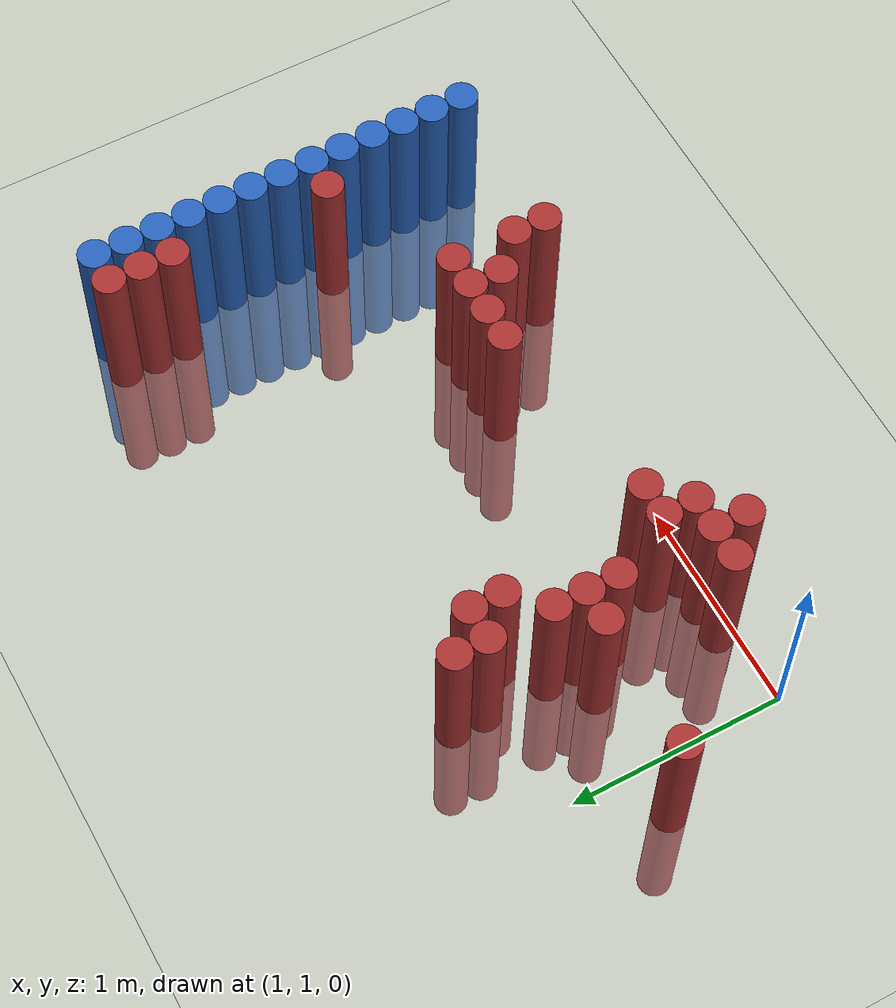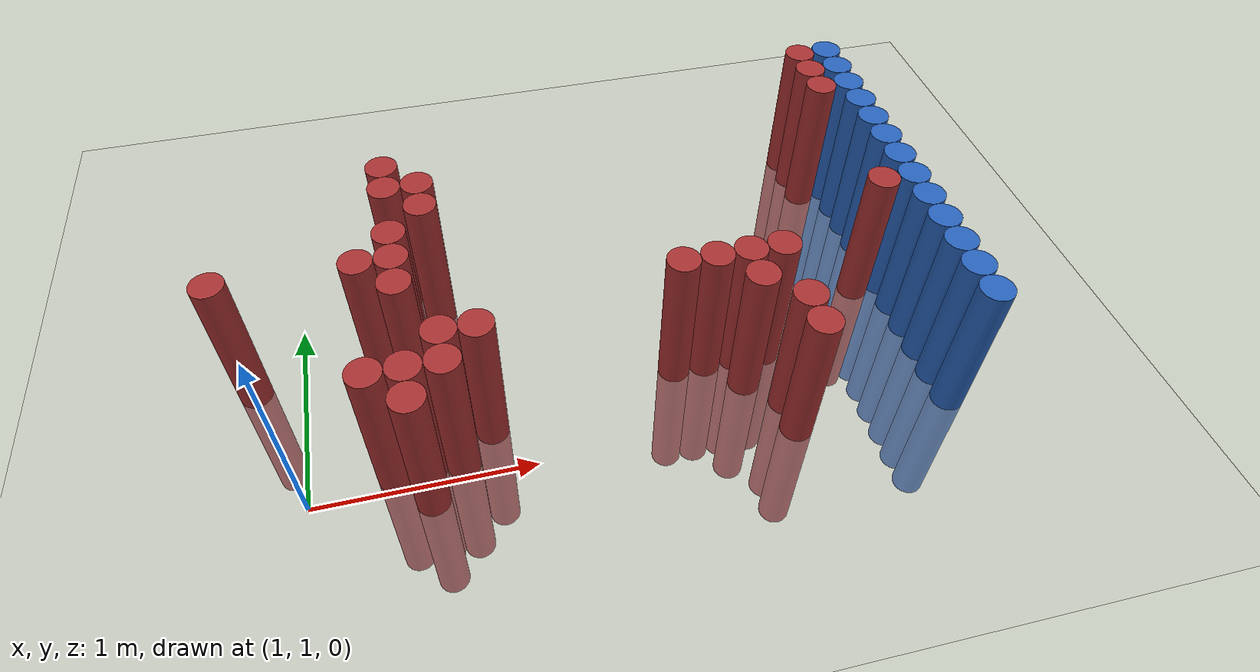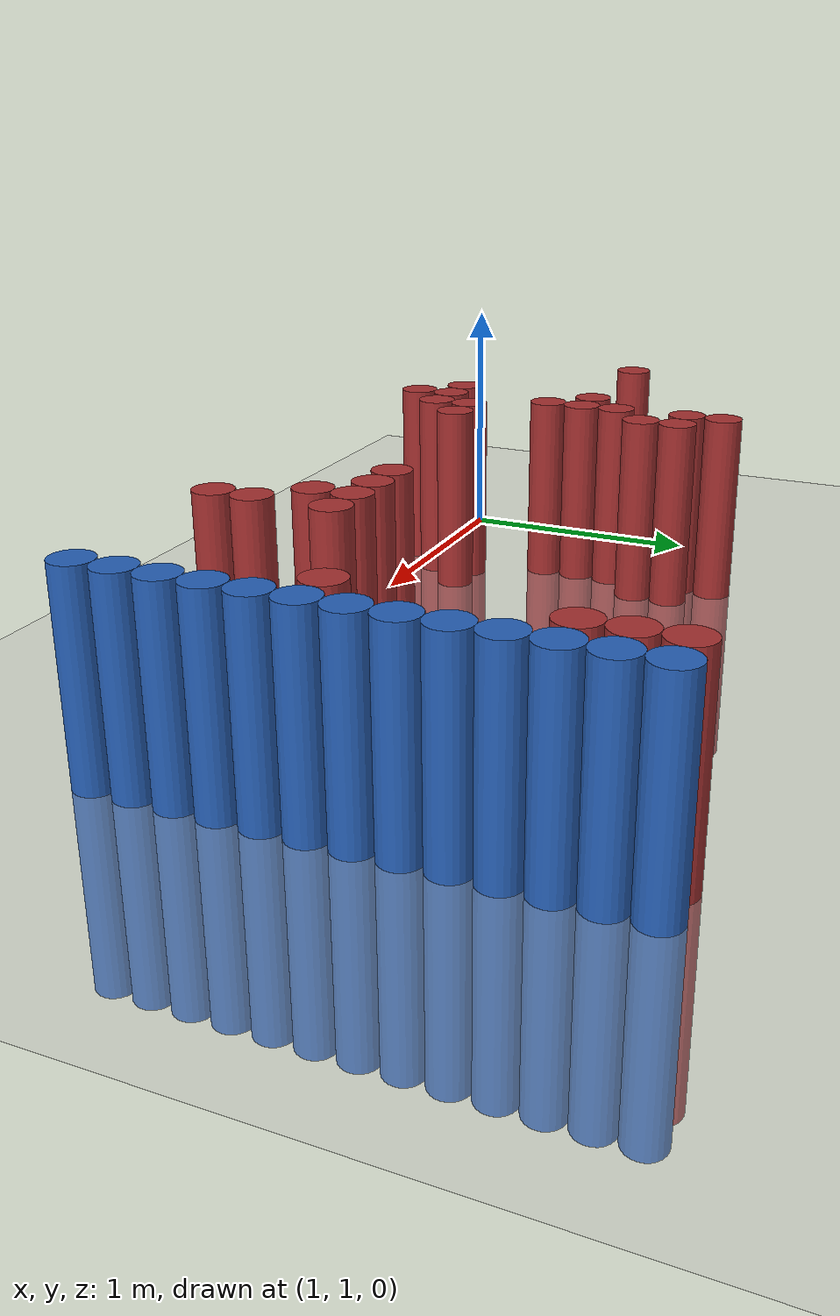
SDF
<sdf version="1.6">
 <world name="default">
  <model name="ground_plane">
   <static>1</static>
   <link name="link">
    <collision name="collision">
     <geometry><plane><normal>0 0 1</normal><size>100 100</size></plane></geometry>
     <surface><friction><ode><mu>100</mu><mu2>50</mu2></ode></friction></surface>
    </collision>
    <visual name="visual">
     <cast_shadows>0</cast_shadows>
     <geometry><plane><normal>0 0 1</normal><size>100 100</size></plane></geometry>
     <material>
      <script><uri>file://media/materials/scripts/gazebo.material</uri><name>Gazebo/Grey</name></script>
     </material>
    </visual>
   </link>
  </model>
  <model name="unit_cylinder_128">
   <static>1</static>
   <pose>3.925000 1.075000 0.000000 0.000000 0.000000 0.000000</pose>
   <link name="link">
    <inertial>
     <mass>1</mass>
     <inertia><ixx>0.145833</ixx><ixy>0</ixy><ixz>0</ixz><iyy>0.145833</iyy><iyz>0</iyz><izz>0.125</izz></inertia>
    </inertial>
    <collision name="collision">
     <geometry><cylinder><radius>0.075000</radius><length>1.5</length></cylinder></geometry>
    </collision>
    <visual name="visual">
     <geometry><cylinder><radius>0.075000</radius><length>1.5</length></cylinder></geometry>
     <material>
      <ambient>0.152000 0.379000 0.720000 1</ambient>
      <diffuse>0.152000 0.379000 0.720000 1</diffuse>
     </material>
     <material>
      <script><name>Gazebo/Grey</name><uri>file://media/materials/scripts/gazebo.material</uri></script>
     </material>
    </visual>
   </link>
  </model>
  <model name="unit_cylinder_130">
   <static>1</static>
   <pose>3.925000 1.225000 0.000000 0.000000 0.000000 0.000000</pose>
   <link name="link">
    <inertial>
     <mass>1</mass>
     <inertia><ixx>0.145833</ixx><ixy>0</ixy><ixz>0</ixz><iyy>0.145833</iyy><iyz>0</iyz><izz>0.125</izz></inertia>
    </inertial>
    <collision name="collision">
     <geometry><cylinder><radius>0.075000</radius><length>1.5</length></cylinder></geometry>
    </collision>
    <visual name="visual">
     <geometry><cylinder><radius>0.075000</radius><length>1.5</length></cylinder></geometry>
     <material>
      <ambient>0.152000 0.379000 0.720000 1</ambient>
      <diffuse>0.152000 0.379000 0.720000 1</diffuse>
     </material>
     <material>
      <script><name>Gazebo/Grey</name><uri>file://media/materials/scripts/gazebo.material</uri></script>
     </material>
    </visual>
   </link>
  </model>
  <model name="unit_cylinder_132">
   <static>1</static>
   <pose>3.925000 1.375000 0.000000 0.000000 0.000000 0.000000</pose>
   <link name="link">
    <inertial>
     <mass>1</mass>
     <inertia><ixx>0.145833</ixx><ixy>0</ixy><ixz>0</ixz><iyy>0.145833</iyy><iyz>0</iyz><izz>0.125</izz></inertia>
    </inertial>
    <collision name="collision">
     <geometry><cylinder><radius>0.075000</radius><length>1.5</length></cylinder></geometry>
    </collision>
    <visual name="visual">
     <geometry><cylinder><radius>0.075000</radius><length>1.5</length></cylinder></geometry>
     <material>
      <ambient>0.152000 0.379000 0.720000 1</ambient>
      <diffuse>0.152000 0.379000 0.720000 1</diffuse>
     </material>
     <material>
      <script><name>Gazebo/Grey</name><uri>file://media/materials/scripts/gazebo.material</uri></script>
     </material>
    </visual>
   </link>
  </model>
  <model name="unit_cylinder_134">
   <static>1</static>
   <pose>3.925000 1.525000 0.000000 0.000000 0.000000 0.000000</pose>
   <link name="link">
    <inertial>
     <mass>1</mass>
     <inertia><ixx>0.145833</ixx><ixy>0</ixy><ixz>0</ixz><iyy>0.145833</iyy><iyz>0</iyz><izz>0.125</izz></inertia>
    </inertial>
    <collision name="collision">
     <geometry><cylinder><radius>0.075000</radius><length>1.5</length></cylinder></geometry>
    </collision>
    <visual name="visual">
     <geometry><cylinder><radius>0.075000</radius><length>1.5</length></cylinder></geometry>
     <material>
      <ambient>0.152000 0.379000 0.720000 1</ambient>
      <diffuse>0.152000 0.379000 0.720000 1</diffuse>
     </material>
     <material>
      <script><name>Gazebo/Grey</name><uri>file://media/materials/scripts/gazebo.material</uri></script>
     </material>
    </visual>
   </link>
  </model>
  <model name="unit_cylinder_136">
   <static>1</static>
   <pose>3.925000 1.675000 0.000000 0.000000 0.000000 0.000000</pose>
   <link name="link">
    <inertial>
     <mass>1</mass>
     <inertia><ixx>0.145833</ixx><ixy>0</ixy><ixz>0</ixz><iyy>0.145833</iyy><iyz>0</iyz><izz>0.125</izz></inertia>
    </inertial>
    <collision name="collision">
     <geometry><cylinder><radius>0.075000</radius><length>1.5</length></cylinder></geometry>
    </collision>
    <visual name="visual">
     <geometry><cylinder><radius>0.075000</radius><length>1.5</length></cylinder></geometry>
     <material>
      <ambient>0.152000 0.379000 0.720000 1</ambient>
      <diffuse>0.152000 0.379000 0.720000 1</diffuse>
     </material>
     <material>
      <script><name>Gazebo/Grey</name><uri>file://media/materials/scripts/gazebo.material</uri></script>
     </material>
    </visual>
   </link>
  </model>
  <model name="unit_cylinder_138">
   <static>1</static>
   <pose>3.925000 1.825000 0.000000 0.000000 0.000000 0.000000</pose>
   <link name="link">
    <inertial>
     <mass>1</mass>
     <inertia><ixx>0.145833</ixx><ixy>0</ixy><ixz>0</ixz><iyy>0.145833</iyy><iyz>0</iyz><izz>0.125</izz></inertia>
    </inertial>
    <collision name="collision">
     <geometry><cylinder><radius>0.075000</radius><length>1.5</length></cylinder></geometry>
    </collision>
    <visual name="visual">
     <geometry><cylinder><radius>0.075000</radius><length>1.5</length></cylinder></geometry>
     <material>
      <ambient>0.152000 0.379000 0.720000 1</ambient>
      <diffuse>0.152000 0.379000 0.720000 1</diffuse>
     </material>
     <material>
      <script><name>Gazebo/Grey</name><uri>file://media/materials/scripts/gazebo.material</uri></script>
     </material>
    </visual>
   </link>
  </model>
  <model name="unit_cylinder_140">
   <static>1</static>
   <pose>3.925000 1.975000 0.000000 0.000000 0.000000 0.000000</pose>
   <link name="link">
    <inertial>
     <mass>1</mass>
     <inertia><ixx>0.145833</ixx><ixy>0</ixy><ixz>0</ixz><iyy>0.145833</iyy><iyz>0</iyz><izz>0.125</izz></inertia>
    </inertial>
    <collision name="collision">
     <geometry><cylinder><radius>0.075000</radius><length>1.5</length></cylinder></geometry>
    </collision>
    <visual name="visual">
     <geometry><cylinder><radius>0.075000</radius><length>1.5</length></cylinder></geometry>
     <material>
      <ambient>0.152000 0.379000 0.720000 1</ambient>
      <diffuse>0.152000 0.379000 0.720000 1</diffuse>
     </material>
     <material>
      <script><name>Gazebo/Grey</name><uri>file://media/materials/scripts/gazebo.material</uri></script>
     </material>
    </visual>
   </link>
  </model>
  <model name="unit_cylinder_142">
   <static>1</static>
   <pose>3.925000 2.125000 0.000000 0.000000 0.000000 0.000000</pose>
   <link name="link">
    <inertial>
     <mass>1</mass>
     <inertia><ixx>0.145833</ixx><ixy>0</ixy><ixz>0</ixz><iyy>0.145833</iyy><iyz>0</iyz><izz>0.125</izz></inertia>
    </inertial>
    <collision name="collision">
     <geometry><cylinder><radius>0.075000</radius><length>1.5</length></cylinder></geometry>
    </collision>
    <visual name="visual">
     <geometry><cylinder><radius>0.075000</radius><length>1.5</length></cylinder></geometry>
     <material>
      <ambient>0.152000 0.379000 0.720000 1</ambient>
      <diffuse>0.152000 0.379000 0.720000 1</diffuse>
     </material>
     <material>
      <script><name>Gazebo/Grey</name><uri>file://media/materials/scripts/gazebo.material</uri></script>
     </material>
    </visual>
   </link>
  </model>
  <model name="unit_cylinder_144">
   <static>1</static>
   <pose>3.925000 2.275000 0.000000 0.000000 0.000000 0.000000</pose>
   <link name="link">
    <inertial>
     <mass>1</mass>
     <inertia><ixx>0.145833</ixx><ixy>0</ixy><ixz>0</ixz><iyy>0.145833</iyy><iyz>0</iyz><izz>0.125</izz></inertia>
    </inertial>
    <collision name="collision">
     <geometry><cylinder><radius>0.075000</radius><length>1.5</length></cylinder></geometry>
    </collision>
    <visual name="visual">
     <geometry><cylinder><radius>0.075000</radius><length>1.5</length></cylinder></geometry>
     <material>
      <ambient>0.152000 0.379000 0.720000 1</ambient>
      <diffuse>0.152000 0.379000 0.720000 1</diffuse>
     </material>
     <material>
      <script><name>Gazebo/Grey</name><uri>file://media/materials/scripts/gazebo.material</uri></script>
     </material>
    </visual>
   </link>
  </model>
  <model name="unit_cylinder_146">
   <static>1</static>
   <pose>3.925000 2.425000 0.000000 0.000000 0.000000 0.000000</pose>
   <link name="link">
    <inertial>
     <mass>1</mass>
     <inertia><ixx>0.145833</ixx><ixy>0</ixy><ixz>0</ixz><iyy>0.145833</iyy><iyz>0</iyz><izz>0.125</izz></inertia>
    </inertial>
    <collision name="collision">
     <geometry><cylinder><radius>0.075000</radius><length>1.5</length></cylinder></geometry>
    </collision>
    <visual name="visual">
     <geometry><cylinder><radius>0.075000</radius><length>1.5</length></cylinder></geometry>
     <material>
      <ambient>0.152000 0.379000 0.720000 1</ambient>
      <diffuse>0.152000 0.379000 0.720000 1</diffuse>
     </material>
     <material>
      <script><name>Gazebo/Grey</name><uri>file://media/materials/scripts/gazebo.material</uri></script>
     </material>
    </visual>
   </link>
  </model>
  <model name="unit_cylinder_148">
   <static>1</static>
   <pose>3.925000 2.575000 0.000000 0.000000 0.000000 0.000000</pose>
   <link name="link">
    <inertial>
     <mass>1</mass>
     <inertia><ixx>0.145833</ixx><ixy>0</ixy><ixz>0</ixz><iyy>0.145833</iyy><iyz>0</iyz><izz>0.125</izz></inertia>
    </inertial>
    <collision name="collision">
     <geometry><cylinder><radius>0.075000</radius><length>1.5</length></cylinder></geometry>
    </collision>
    <visual name="visual">
     <geometry><cylinder><radius>0.075000</radius><length>1.5</length></cylinder></geometry>
     <material>
      <ambient>0.152000 0.379000 0.720000 1</ambient>
      <diffuse>0.152000 0.379000 0.720000 1</diffuse>
     </material>
     <material>
      <script><name>Gazebo/Grey</name><uri>file://media/materials/scripts/gazebo.material</uri></script>
     </material>
    </visual>
   </link>
  </model>
  <model name="unit_cylinder_150">
   <static>1</static>
   <pose>3.925000 2.725000 0.000000 0.000000 0.000000 0.000000</pose>
   <link name="link">
    <inertial>
     <mass>1</mass>
     <inertia><ixx>0.145833</ixx><ixy>0</ixy><ixz>0</ixz><iyy>0.145833</iyy><iyz>0</iyz><izz>0.125</izz></inertia>
    </inertial>
    <collision name="collision">
     <geometry><cylinder><radius>0.075000</radius><length>1.5</length></cylinder></geometry>
    </collision>
    <visual name="visual">
     <geometry><cylinder><radius>0.075000</radius><length>1.5</length></cylinder></geometry>
     <material>
      <ambient>0.152000 0.379000 0.720000 1</ambient>
      <diffuse>0.152000 0.379000 0.720000 1</diffuse>
     </material>
     <material>
      <script><name>Gazebo/Grey</name><uri>file://media/materials/scripts/gazebo.material</uri></script>
     </material>
    </visual>
   </link>
  </model>
  <model name="unit_cylinder_363">
   <static>1</static>
   <pose>0.775000 1.675000 0.000000 0.000000 0.000000 0.000000</pose>
   <link name="link">
    <inertial>
     <mass>1</mass>
     <inertia><ixx>0.145833</ixx><ixy>0</ixy><ixz>0</ixz><iyy>0.145833</iyy><iyz>0</iyz><izz>0.125</izz></inertia>
    </inertial>
    <collision name="collision">
     <geometry><cylinder><radius>0.075000</radius><length>1.5</length></cylinder></geometry>
    </collision>
    <visual name="visual">
     <geometry><cylinder><radius>0.075000</radius><length>1.5</length></cylinder></geometry>
     <material>
      <ambient>0.648000 0.192000 0.192000 1</ambient>
      <diffuse>0.648000 0.192000 0.192000 1</diffuse>
     </material>
     <material>
      <script><name>Gazebo/Grey</name><uri>file://media/materials/scripts/gazebo.material</uri></script>
     </material>
    </visual>
   </link>
  </model>
  <model name="unit_cylinder_375">
   <static>1</static>
   <pose>1.375000 1.075000 0.000000 0.000000 0.000000 0.000000</pose>
   <link name="link">
    <inertial>
     <mass>1</mass>
     <inertia><ixx>0.145833</ixx><ixy>0</ixy><ixz>0</ixz><iyy>0.145833</iyy><iyz>0</iyz><izz>0.125</izz></inertia>
    </inertial>
    <collision name="collision">
     <geometry><cylinder><radius>0.075000</radius><length>1.5</length></cylinder></geometry>
    </collision>
    <visual name="visual">
     <geometry><cylinder><radius>0.075000</radius><length>1.5</length></cylinder></geometry>
     <material>
      <ambient>0.648000 0.192000 0.192000 1</ambient>
      <diffuse>0.648000 0.192000 0.192000 1</diffuse>
     </material>
     <material>
      <script><name>Gazebo/Grey</name><uri>file://media/materials/scripts/gazebo.material</uri></script>
     </material>
    </visual>
   </link>
  </model>
  <model name="unit_cylinder_376">
   <static>1</static>
   <pose>1.375000 1.675000 0.000000 0.000000 0.000000 0.000000</pose>
   <link name="link">
    <inertial>
     <mass>1</mass>
     <inertia><ixx>0.145833</ixx><ixy>0</ixy><ixz>0</ixz><iyy>0.145833</iyy><iyz>0</iyz><izz>0.125</izz></inertia>
    </inertial>
    <collision name="collision">
     <geometry><cylinder><radius>0.075000</radius><length>1.5</length></cylinder></geometry>
    </collision>
    <visual name="visual">
     <geometry><cylinder><radius>0.075000</radius><length>1.5</length></cylinder></geometry>
     <material>
      <ambient>0.648000 0.192000 0.192000 1</ambient>
      <diffuse>0.648000 0.192000 0.192000 1</diffuse>
     </material>
     <material>
      <script><name>Gazebo/Grey</name><uri>file://media/materials/scripts/gazebo.material</uri></script>
     </material>
    </visual>
   </link>
  </model>
  <model name="unit_cylinder_380">
   <static>1</static>
   <pose>1.525000 0.925000 0.000000 0.000000 0.000000 0.000000</pose>
   <link name="link">
    <inertial>
     <mass>1</mass>
     <inertia><ixx>0.145833</ixx><ixy>0</ixy><ixz>0</ixz><iyy>0.145833</iyy><iyz>0</iyz><izz>0.125</izz></inertia>
    </inertial>
    <collision name="collision">
     <geometry><cylinder><radius>0.075000</radius><length>1.5</length></cylinder></geometry>
    </collision>
    <visual name="visual">
     <geometry><cylinder><radius>0.075000</radius><length>1.5</length></cylinder></geometry>
     <material>
      <ambient>0.648000 0.192000 0.192000 1</ambient>
      <diffuse>0.648000 0.192000 0.192000 1</diffuse>
     </material>
     <material>
      <script><name>Gazebo/Grey</name><uri>file://media/materials/scripts/gazebo.material</uri></script>
     </material>
    </visual>
   </link>
  </model>
  <model name="unit_cylinder_381">
   <static>1</static>
   <pose>1.525000 1.075000 0.000000 0.000000 0.000000 0.000000</pose>
   <link name="link">
    <inertial>
     <mass>1</mass>
     <inertia><ixx>0.145833</ixx><ixy>0</ixy><ixz>0</ixz><iyy>0.145833</iyy><iyz>0</iyz><izz>0.125</izz></inertia>
    </inertial>
    <collision name="collision">
     <geometry><cylinder><radius>0.075000</radius><length>1.5</length></cylinder></geometry>
    </collision>
    <visual name="visual">
     <geometry><cylinder><radius>0.075000</radius><length>1.5</length></cylinder></geometry>
     <material>
      <ambient>0.648000 0.192000 0.192000 1</ambient>
      <diffuse>0.648000 0.192000 0.192000 1</diffuse>
     </material>
     <material>
      <script><name>Gazebo/Grey</name><uri>file://media/materials/scripts/gazebo.material</uri></script>
     </material>
    </visual>
   </link>
  </model>
  <model name="unit_cylinder_382">
   <static>1</static>
   <pose>1.525000 1.525000 0.000000 0.000000 0.000000 0.000000</pose>
   <link name="link">
    <inertial>
     <mass>1</mass>
     <inertia><ixx>0.145833</ixx><ixy>0</ixy><ixz>0</ixz><iyy>0.145833</iyy><iyz>0</iyz><izz>0.125</izz></inertia>
    </inertial>
    <collision name="collision">
     <geometry><cylinder><radius>0.075000</radius><length>1.5</length></cylinder></geometry>
    </collision>
    <visual name="visual">
     <geometry><cylinder><radius>0.075000</radius><length>1.5</length></cylinder></geometry>
     <material>
      <ambient>0.648000 0.192000 0.192000 1</ambient>
      <diffuse>0.648000 0.192000 0.192000 1</diffuse>
     </material>
     <material>
      <script><name>Gazebo/Grey</name><uri>file://media/materials/scripts/gazebo.material</uri></script>
     </material>
    </visual>
   </link>
  </model>
  <model name="unit_cylinder_383">
   <static>1</static>
   <pose>1.525000 1.675000 0.000000 0.000000 0.000000 0.000000</pose>
   <link name="link">
    <inertial>
     <mass>1</mass>
     <inertia><ixx>0.145833</ixx><ixy>0</ixy><ixz>0</ixz><iyy>0.145833</iyy><iyz>0</iyz><izz>0.125</izz></inertia>
    </inertial>
    <collision name="collision">
     <geometry><cylinder><radius>0.075000</radius><length>1.5</length></cylinder></geometry>
    </collision>
    <visual name="visual">
     <geometry><cylinder><radius>0.075000</radius><length>1.5</length></cylinder></geometry>
     <material>
      <ambient>0.648000 0.192000 0.192000 1</ambient>
      <diffuse>0.648000 0.192000 0.192000 1</diffuse>
     </material>
     <material>
      <script><name>Gazebo/Grey</name><uri>file://media/materials/scripts/gazebo.material</uri></script>
     </material>
    </visual>
   </link>
  </model>
  <model name="unit_cylinder_384">
   <static>1</static>
   <pose>1.525000 1.825000 0.000000 0.000000 0.000000 0.000000</pose>
   <link name="link">
    <inertial>
     <mass>1</mass>
     <inertia><ixx>0.145833</ixx><ixy>0</ixy><ixz>0</ixz><iyy>0.145833</iyy><iyz>0</iyz><izz>0.125</izz></inertia>
    </inertial>
    <collision name="collision">
     <geometry><cylinder><radius>0.075000</radius><length>1.5</length></cylinder></geometry>
    </collision>
    <visual name="visual">
     <geometry><cylinder><radius>0.075000</radius><length>1.5</length></cylinder></geometry>
     <material>
      <ambient>0.648000 0.192000 0.192000 1</ambient>
      <diffuse>0.648000 0.192000 0.192000 1</diffuse>
     </material>
     <material>
      <script><name>Gazebo/Grey</name><uri>file://media/materials/scripts/gazebo.material</uri></script>
     </material>
    </visual>
   </link>
  </model>
  <model name="unit_cylinder_385">
   <static>1</static>
   <pose>1.525000 2.125000 0.000000 0.000000 0.000000 0.000000</pose>
   <link name="link">
    <inertial>
     <mass>1</mass>
     <inertia><ixx>0.145833</ixx><ixy>0</ixy><ixz>0</ixz><iyy>0.145833</iyy><iyz>0</iyz><izz>0.125</izz></inertia>
    </inertial>
    <collision name="collision">
     <geometry><cylinder><radius>0.075000</radius><length>1.5</length></cylinder></geometry>
    </collision>
    <visual name="visual">
     <geometry><cylinder><radius>0.075000</radius><length>1.5</length></cylinder></geometry>
     <material>
      <ambient>0.648000 0.192000 0.192000 1</ambient>
      <diffuse>0.648000 0.192000 0.192000 1</diffuse>
     </material>
     <material>
      <script><name>Gazebo/Grey</name><uri>file://media/materials/scripts/gazebo.material</uri></script>
     </material>
    </visual>
   </link>
  </model>
  <model name="unit_cylinder_386">
   <static>1</static>
   <pose>1.525000 2.275000 0.000000 0.000000 0.000000 0.000000</pose>
   <link name="link">
    <inertial>
     <mass>1</mass>
     <inertia><ixx>0.145833</ixx><ixy>0</ixy><ixz>0</ixz><iyy>0.145833</iyy><iyz>0</iyz><izz>0.125</izz></inertia>
    </inertial>
    <collision name="collision">
     <geometry><cylinder><radius>0.075000</radius><length>1.5</length></cylinder></geometry>
    </collision>
    <visual name="visual">
     <geometry><cylinder><radius>0.075000</radius><length>1.5</length></cylinder></geometry>
     <material>
      <ambient>0.648000 0.192000 0.192000 1</ambient>
      <diffuse>0.648000 0.192000 0.192000 1</diffuse>
     </material>
     <material>
      <script><name>Gazebo/Grey</name><uri>file://media/materials/scripts/gazebo.material</uri></script>
     </material>
    </visual>
   </link>
  </model>
  <model name="unit_cylinder_388">
   <static>1</static>
   <pose>1.675000 1.075000 0.000000 0.000000 0.000000 0.000000</pose>
   <link name="link">
    <inertial>
     <mass>1</mass>
     <inertia><ixx>0.145833</ixx><ixy>0</ixy><ixz>0</ixz><iyy>0.145833</iyy><iyz>0</iyz><izz>0.125</izz></inertia>
    </inertial>
    <collision name="collision">
     <geometry><cylinder><radius>0.075000</radius><length>1.5</length></cylinder></geometry>
    </collision>
    <visual name="visual">
     <geometry><cylinder><radius>0.075000</radius><length>1.5</length></cylinder></geometry>
     <material>
      <ambient>0.648000 0.192000 0.192000 1</ambient>
      <diffuse>0.648000 0.192000 0.192000 1</diffuse>
     </material>
     <material>
      <script><name>Gazebo/Grey</name><uri>file://media/materials/scripts/gazebo.material</uri></script>
     </material>
    </visual>
   </link>
  </model>
  <model name="unit_cylinder_389">
   <static>1</static>
   <pose>1.675000 1.225000 0.000000 0.000000 0.000000 0.000000</pose>
   <link name="link">
    <inertial>
     <mass>1</mass>
     <inertia><ixx>0.145833</ixx><ixy>0</ixy><ixz>0</ixz><iyy>0.145833</iyy><iyz>0</iyz><izz>0.125</izz></inertia>
    </inertial>
    <collision name="collision">
     <geometry><cylinder><radius>0.075000</radius><length>1.5</length></cylinder></geometry>
    </collision>
    <visual name="visual">
     <geometry><cylinder><radius>0.075000</radius><length>1.5</length></cylinder></geometry>
     <material>
      <ambient>0.648000 0.192000 0.192000 1</ambient>
      <diffuse>0.648000 0.192000 0.192000 1</diffuse>
     </material>
     <material>
      <script><name>Gazebo/Grey</name><uri>file://media/materials/scripts/gazebo.material</uri></script>
     </material>
    </visual>
   </link>
  </model>
  <model name="unit_cylinder_390">
   <static>1</static>
   <pose>1.675000 1.975000 0.000000 0.000000 0.000000 0.000000</pose>
   <link name="link">
    <inertial>
     <mass>1</mass>
     <inertia><ixx>0.145833</ixx><ixy>0</ixy><ixz>0</ixz><iyy>0.145833</iyy><iyz>0</iyz><izz>0.125</izz></inertia>
    </inertial>
    <collision name="collision">
     <geometry><cylinder><radius>0.075000</radius><length>1.5</length></cylinder></geometry>
    </collision>
    <visual name="visual">
     <geometry><cylinder><radius>0.075000</radius><length>1.5</length></cylinder></geometry>
     <material>
      <ambient>0.648000 0.192000 0.192000 1</ambient>
      <diffuse>0.648000 0.192000 0.192000 1</diffuse>
     </material>
     <material>
      <script><name>Gazebo/Grey</name><uri>file://media/materials/scripts/gazebo.material</uri></script>
     </material>
    </visual>
   </link>
  </model>
  <model name="unit_cylinder_391">
   <static>1</static>
   <pose>1.675000 2.125000 0.000000 0.000000 0.000000 0.000000</pose>
   <link name="link">
    <inertial>
     <mass>1</mass>
     <inertia><ixx>0.145833</ixx><ixy>0</ixy><ixz>0</ixz><iyy>0.145833</iyy><iyz>0</iyz><izz>0.125</izz></inertia>
    </inertial>
    <collision name="collision">
     <geometry><cylinder><radius>0.075000</radius><length>1.5</length></cylinder></geometry>
    </collision>
    <visual name="visual">
     <geometry><cylinder><radius>0.075000</radius><length>1.5</length></cylinder></geometry>
     <material>
      <ambient>0.648000 0.192000 0.192000 1</ambient>
      <diffuse>0.648000 0.192000 0.192000 1</diffuse>
     </material>
     <material>
      <script><name>Gazebo/Grey</name><uri>file://media/materials/scripts/gazebo.material</uri></script>
     </material>
    </visual>
   </link>
  </model>
  <model name="unit_cylinder_394">
   <static>1</static>
   <pose>1.825000 1.225000 0.000000 0.000000 0.000000 0.000000</pose>
   <link name="link">
    <inertial>
     <mass>1</mass>
     <inertia><ixx>0.145833</ixx><ixy>0</ixy><ixz>0</ixz><iyy>0.145833</iyy><iyz>0</iyz><izz>0.125</izz></inertia>
    </inertial>
    <collision name="collision">
     <geometry><cylinder><radius>0.075000</radius><length>1.5</length></cylinder></geometry>
    </collision>
    <visual name="visual">
     <geometry><cylinder><radius>0.075000</radius><length>1.5</length></cylinder></geometry>
     <material>
      <ambient>0.648000 0.192000 0.192000 1</ambient>
      <diffuse>0.648000 0.192000 0.192000 1</diffuse>
     </material>
     <material>
      <script><name>Gazebo/Grey</name><uri>file://media/materials/scripts/gazebo.material</uri></script>
     </material>
    </visual>
   </link>
  </model>
  <model name="unit_cylinder_415">
   <static>1</static>
   <pose>2.725000 1.375000 0.000000 0.000000 0.000000 0.000000</pose>
   <link name="link">
    <inertial>
     <mass>1</mass>
     <inertia><ixx>0.145833</ixx><ixy>0</ixy><ixz>0</ixz><iyy>0.145833</iyy><iyz>0</iyz><izz>0.125</izz></inertia>
    </inertial>
    <collision name="collision">
     <geometry><cylinder><radius>0.075000</radius><length>1.5</length></cylinder></geometry>
    </collision>
    <visual name="visual">
     <geometry><cylinder><radius>0.075000</radius><length>1.5</length></cylinder></geometry>
     <material>
      <ambient>0.648000 0.192000 0.192000 1</ambient>
      <diffuse>0.648000 0.192000 0.192000 1</diffuse>
     </material>
     <material>
      <script><name>Gazebo/Grey</name><uri>file://media/materials/scripts/gazebo.material</uri></script>
     </material>
    </visual>
   </link>
  </model>
  <model name="unit_cylinder_418">
   <static>1</static>
   <pose>2.875000 1.375000 0.000000 0.000000 0.000000 0.000000</pose>
   <link name="link">
    <inertial>
     <mass>1</mass>
     <inertia><ixx>0.145833</ixx><ixy>0</ixy><ixz>0</ixz><iyy>0.145833</iyy><iyz>0</iyz><izz>0.125</izz></inertia>
    </inertial>
    <collision name="collision">
     <geometry><cylinder><radius>0.075000</radius><length>1.5</length></cylinder></geometry>
    </collision>
    <visual name="visual">
     <geometry><cylinder><radius>0.075000</radius><length>1.5</length></cylinder></geometry>
     <material>
      <ambient>0.648000 0.192000 0.192000 1</ambient>
      <diffuse>0.648000 0.192000 0.192000 1</diffuse>
     </material>
     <material>
      <script><name>Gazebo/Grey</name><uri>file://media/materials/scripts/gazebo.material</uri></script>
     </material>
    </visual>
   </link>
  </model>
  <model name="unit_cylinder_422">
   <static>1</static>
   <pose>3.025000 1.225000 0.000000 0.000000 0.000000 0.000000</pose>
   <link name="link">
    <inertial>
     <mass>1</mass>
     <inertia><ixx>0.145833</ixx><ixy>0</ixy><ixz>0</ixz><iyy>0.145833</iyy><iyz>0</iyz><izz>0.125</izz></inertia>
    </inertial>
    <collision name="collision">
     <geometry><cylinder><radius>0.075000</radius><length>1.5</length></cylinder></geometry>
    </collision>
    <visual name="visual">
     <geometry><cylinder><radius>0.075000</radius><length>1.5</length></cylinder></geometry>
     <material>
      <ambient>0.648000 0.192000 0.192000 1</ambient>
      <diffuse>0.648000 0.192000 0.192000 1</diffuse>
     </material>
     <material>
      <script><name>Gazebo/Grey</name><uri>file://media/materials/scripts/gazebo.material</uri></script>
     </material>
    </visual>
   </link>
  </model>
  <model name="unit_cylinder_423">
   <static>1</static>
   <pose>3.025000 1.375000 0.000000 0.000000 0.000000 0.000000</pose>
   <link name="link">
    <inertial>
     <mass>1</mass>
     <inertia><ixx>0.145833</ixx><ixy>0</ixy><ixz>0</ixz><iyy>0.145833</iyy><iyz>0</iyz><izz>0.125</izz></inertia>
    </inertial>
    <collision name="collision">
     <geometry><cylinder><radius>0.075000</radius><length>1.5</length></cylinder></geometry>
    </collision>
    <visual name="visual">
     <geometry><cylinder><radius>0.075000</radius><length>1.5</length></cylinder></geometry>
     <material>
      <ambient>0.648000 0.192000 0.192000 1</ambient>
      <diffuse>0.648000 0.192000 0.192000 1</diffuse>
     </material>
     <material>
      <script><name>Gazebo/Grey</name><uri>file://media/materials/scripts/gazebo.material</uri></script>
     </material>
    </visual>
   </link>
  </model>
  <model name="unit_cylinder_425">
   <static>1</static>
   <pose>3.175000 0.925000 0.000000 0.000000 0.000000 0.000000</pose>
   <link name="link">
    <inertial>
     <mass>1</mass>
     <inertia><ixx>0.145833</ixx><ixy>0</ixy><ixz>0</ixz><iyy>0.145833</iyy><iyz>0</iyz><izz>0.125</izz></inertia>
    </inertial>
    <collision name="collision">
     <geometry><cylinder><radius>0.075000</radius><length>1.5</length></cylinder></geometry>
    </collision>
    <visual name="visual">
     <geometry><cylinder><radius>0.075000</radius><length>1.5</length></cylinder></geometry>
     <material>
      <ambient>0.648000 0.192000 0.192000 1</ambient>
      <diffuse>0.648000 0.192000 0.192000 1</diffuse>
     </material>
     <material>
      <script><name>Gazebo/Grey</name><uri>file://media/materials/scripts/gazebo.material</uri></script>
     </material>
    </visual>
   </link>
  </model>
  <model name="unit_cylinder_426">
   <static>1</static>
   <pose>3.175000 1.075000 0.000000 0.000000 0.000000 0.000000</pose>
   <link name="link">
    <inertial>
     <mass>1</mass>
     <inertia><ixx>0.145833</ixx><ixy>0</ixy><ixz>0</ixz><iyy>0.145833</iyy><iyz>0</iyz><izz>0.125</izz></inertia>
    </inertial>
    <collision name="collision">
     <geometry><cylinder><radius>0.075000</radius><length>1.5</length></cylinder></geometry>
    </collision>
    <visual name="visual">
     <geometry><cylinder><radius>0.075000</radius><length>1.5</length></cylinder></geometry>
     <material>
      <ambient>0.648000 0.192000 0.192000 1</ambient>
      <diffuse>0.648000 0.192000 0.192000 1</diffuse>
     </material>
     <material>
      <script><name>Gazebo/Grey</name><uri>file://media/materials/scripts/gazebo.material</uri></script>
     </material>
    </visual>
   </link>
  </model>
  <model name="unit_cylinder_427">
   <static>1</static>
   <pose>3.175000 1.375000 0.000000 0.000000 0.000000 0.000000</pose>
   <link name="link">
    <inertial>
     <mass>1</mass>
     <inertia><ixx>0.145833</ixx><ixy>0</ixy><ixz>0</ixz><iyy>0.145833</iyy><iyz>0</iyz><izz>0.125</izz></inertia>
    </inertial>
    <collision name="collision">
     <geometry><cylinder><radius>0.075000</radius><length>1.5</length></cylinder></geometry>
    </collision>
    <visual name="visual">
     <geometry><cylinder><radius>0.075000</radius><length>1.5</length></cylinder></geometry>
     <material>
      <ambient>0.648000 0.192000 0.192000 1</ambient>
      <diffuse>0.648000 0.192000 0.192000 1</diffuse>
     </material>
     <material>
      <script><name>Gazebo/Grey</name><uri>file://media/materials/scripts/gazebo.material</uri></script>
     </material>
    </visual>
   </link>
  </model>
  <model name="unit_cylinder_438">
   <static>1</static>
   <pose>3.775000 1.675000 0.000000 0.000000 0.000000 0.000000</pose>
   <link name="link">
    <inertial>
     <mass>1</mass>
     <inertia><ixx>0.145833</ixx><ixy>0</ixy><ixz>0</ixz><iyy>0.145833</iyy><iyz>0</iyz><izz>0.125</izz></inertia>
    </inertial>
    <collision name="collision">
     <geometry><cylinder><radius>0.075000</radius><length>1.5</length></cylinder></geometry>
    </collision>
    <visual name="visual">
     <geometry><cylinder><radius>0.075000</radius><length>1.5</length></cylinder></geometry>
     <material>
      <ambient>0.648000 0.192000 0.192000 1</ambient>
      <diffuse>0.648000 0.192000 0.192000 1</diffuse>
     </material>
     <material>
      <script><name>Gazebo/Grey</name><uri>file://media/materials/scripts/gazebo.material</uri></script>
     </material>
    </visual>
   </link>
  </model>
  <model name="unit_cylinder_439">
   <static>1</static>
   <pose>3.775000 2.425000 0.000000 0.000000 0.000000 0.000000</pose>
   <link name="link">
    <inertial>
     <mass>1</mass>
     <inertia><ixx>0.145833</ixx><ixy>0</ixy><ixz>0</ixz><iyy>0.145833</iyy><iyz>0</iyz><izz>0.125</izz></inertia>
    </inertial>
    <collision name="collision">
     <geometry><cylinder><radius>0.075000</radius><length>1.5</length></cylinder></geometry>
    </collision>
    <visual name="visual">
     <geometry><cylinder><radius>0.075000</radius><length>1.5</length></cylinder></geometry>
     <material>
      <ambient>0.648000 0.192000 0.192000 1</ambient>
      <diffuse>0.648000 0.192000 0.192000 1</diffuse>
     </material>
     <material>
      <script><name>Gazebo/Grey</name><uri>file://media/materials/scripts/gazebo.material</uri></script>
     </material>
    </visual>
   </link>
  </model>
  <model name="unit_cylinder_440">
   <static>1</static>
   <pose>3.775000 2.575000 0.000000 0.000000 0.000000 0.000000</pose>
   <link name="link">
    <inertial>
     <mass>1</mass>
     <inertia><ixx>0.145833</ixx><ixy>0</ixy><ixz>0</ixz><iyy>0.145833</iyy><iyz>0</iyz><izz>0.125</izz></inertia>
    </inertial>
    <collision name="collision">
     <geometry><cylinder><radius>0.075000</radius><length>1.5</length></cylinder></geometry>
    </collision>
    <visual name="visual">
     <geometry><cylinder><radius>0.075000</radius><length>1.5</length></cylinder></geometry>
     <material>
      <ambient>0.648000 0.192000 0.192000 1</ambient>
      <diffuse>0.648000 0.192000 0.192000 1</diffuse>
     </material>
     <material>
      <script><name>Gazebo/Grey</name><uri>file://media/materials/scripts/gazebo.material</uri></script>
     </material>
    </visual>
   </link>
  </model>
  <model name="unit_cylinder_441">
   <static>1</static>
   <pose>3.775000 2.725000 0.000000 0.000000 0.000000 0.000000</pose>
   <link name="link">
    <inertial>
     <mass>1</mass>
     <inertia><ixx>0.145833</ixx><ixy>0</ixy><ixz>0</ixz><iyy>0.145833</iyy><iyz>0</iyz><izz>0.125</izz></inertia>
    </inertial>
    <collision name="collision">
     <geometry><cylinder><radius>0.075000</radius><length>1.5</length></cylinder></geometry>
    </collision>
    <visual name="visual">
     <geometry><cylinder><radius>0.075000</radius><length>1.5</length></cylinder></geometry>
     <material>
      <ambient>0.648000 0.192000 0.192000 1</ambient>
      <diffuse>0.648000 0.192000 0.192000 1</diffuse>
     </material>
     <material>
      <script><name>Gazebo/Grey</name><uri>file://media/materials/scripts/gazebo.material</uri></script>
     </material>
    </visual>
   </link>
  </model>
  <model name="unit_cylinder_469">
   <static>1</static>
   <pose>3.925000 0.925000 0.000000 0.000000 0.000000 0.000000</pose>
   <link name="link">
    <inertial>
     <mass>1</mass>
     <inertia><ixx>0.145833</ixx><ixy>0</ixy><ixz>0</ixz><iyy>0.145833</iyy><iyz>0</iyz><izz>0.125</izz></inertia>
    </inertial>
    <collision name="collision">
     <geometry><cylinder><radius>0.075000</radius><length>1.5</length></cylinder></geometry>
    </collision>
    <visual name="visual">
     <geometry><cylinder><radius>0.075000</radius><length>1.5</length></cylinder></geometry>
     <material>
      <ambient>0.152000 0.379000 0.720000 1</ambient>
      <diffuse>0.152000 0.379000 0.720000 1</diffuse>
     </material>
     <material>
      <script><name>Gazebo/Grey</name><uri>file://media/materials/scripts/gazebo.material</uri></script>
     </material>
    </visual>
   </link>
  </model>
  <model name="unit_cylinder_470">
   <static>1</static>
   <pose>3.925000 1.075000 0.000000 0.000000 0.000000 0.000000</pose>
   <link name="link">
    <inertial>
     <mass>1</mass>
     <inertia><ixx>0.145833</ixx><ixy>0</ixy><ixz>0</ixz><iyy>0.145833</iyy><iyz>0</iyz><izz>0.125</izz></inertia>
    </inertial>
    <collision name="collision">
     <geometry><cylinder><radius>0.075000</radius><length>1.5</length></cylinder></geometry>
    </collision>
    <visual name="visual">
     <geometry><cylinder><radius>0.075000</radius><length>1.5</length></cylinder></geometry>
     <material>
      <ambient>0.152000 0.379000 0.720000 1</ambient>
      <diffuse>0.152000 0.379000 0.720000 1</diffuse>
     </material>
     <material>
      <script><name>Gazebo/Grey</name><uri>file://media/materials/scripts/gazebo.material</uri></script>
     </material>
    </visual>
   </link>
  </model>
  <model name="unit_cylinder_471">
   <static>1</static>
   <pose>3.925000 1.225000 0.000000 0.000000 0.000000 0.000000</pose>
   <link name="link">
    <inertial>
     <mass>1</mass>
     <inertia><ixx>0.145833</ixx><ixy>0</ixy><ixz>0</ixz><iyy>0.145833</iyy><iyz>0</iyz><izz>0.125</izz></inertia>
    </inertial>
    <collision name="collision">
     <geometry><cylinder><radius>0.075000</radius><length>1.5</length></cylinder></geometry>
    </collision>
    <visual name="visual">
     <geometry><cylinder><radius>0.075000</radius><length>1.5</length></cylinder></geometry>
     <material>
      <ambient>0.152000 0.379000 0.720000 1</ambient>
      <diffuse>0.152000 0.379000 0.720000 1</diffuse>
     </material>
     <material>
      <script><name>Gazebo/Grey</name><uri>file://media/materials/scripts/gazebo.material</uri></script>
     </material>
    </visual>
   </link>
  </model>
  <model name="unit_cylinder_472">
   <static>1</static>
   <pose>3.925000 1.375000 0.000000 0.000000 0.000000 0.000000</pose>
   <link name="link">
    <inertial>
     <mass>1</mass>
     <inertia><ixx>0.145833</ixx><ixy>0</ixy><ixz>0</ixz><iyy>0.145833</iyy><iyz>0</iyz><izz>0.125</izz></inertia>
    </inertial>
    <collision name="collision">
     <geometry><cylinder><radius>0.075000</radius><length>1.5</length></cylinder></geometry>
    </collision>
    <visual name="visual">
     <geometry><cylinder><radius>0.075000</radius><length>1.5</length></cylinder></geometry>
     <material>
      <ambient>0.152000 0.379000 0.720000 1</ambient>
      <diffuse>0.152000 0.379000 0.720000 1</diffuse>
     </material>
     <material>
      <script><name>Gazebo/Grey</name><uri>file://media/materials/scripts/gazebo.material</uri></script>
     </material>
    </visual>
   </link>
  </model>
  <model name="unit_cylinder_473">
   <static>1</static>
   <pose>3.925000 1.525000 0.000000 0.000000 0.000000 0.000000</pose>
   <link name="link">
    <inertial>
     <mass>1</mass>
     <inertia><ixx>0.145833</ixx><ixy>0</ixy><ixz>0</ixz><iyy>0.145833</iyy><iyz>0</iyz><izz>0.125</izz></inertia>
    </inertial>
    <collision name="collision">
     <geometry><cylinder><radius>0.075000</radius><length>1.5</length></cylinder></geometry>
    </collision>
    <visual name="visual">
     <geometry><cylinder><radius>0.075000</radius><length>1.5</length></cylinder></geometry>
     <material>
      <ambient>0.152000 0.379000 0.720000 1</ambient>
      <diffuse>0.152000 0.379000 0.720000 1</diffuse>
     </material>
     <material>
      <script><name>Gazebo/Grey</name><uri>file://media/materials/scripts/gazebo.material</uri></script>
     </material>
    </visual>
   </link>
  </model>
  <model name="unit_cylinder_474">
   <static>1</static>
   <pose>3.925000 1.675000 0.000000 0.000000 0.000000 0.000000</pose>
   <link name="link">
    <inertial>
     <mass>1</mass>
     <inertia><ixx>0.145833</ixx><ixy>0</ixy><ixz>0</ixz><iyy>0.145833</iyy><iyz>0</iyz><izz>0.125</izz></inertia>
    </inertial>
    <collision name="collision">
     <geometry><cylinder><radius>0.075000</radius><length>1.5</length></cylinder></geometry>
    </collision>
    <visual name="visual">
     <geometry><cylinder><radius>0.075000</radius><length>1.5</length></cylinder></geometry>
     <material>
      <ambient>0.152000 0.379000 0.720000 1</ambient>
      <diffuse>0.152000 0.379000 0.720000 1</diffuse>
     </material>
     <material>
      <script><name>Gazebo/Grey</name><uri>file://media/materials/scripts/gazebo.material</uri></script>
     </material>
    </visual>
   </link>
  </model>
  <model name="unit_cylinder_475">
   <static>1</static>
   <pose>3.925000 1.825000 0.000000 0.000000 0.000000 0.000000</pose>
   <link name="link">
    <inertial>
     <mass>1</mass>
     <inertia><ixx>0.145833</ixx><ixy>0</ixy><ixz>0</ixz><iyy>0.145833</iyy><iyz>0</iyz><izz>0.125</izz></inertia>
    </inertial>
    <collision name="collision">
     <geometry><cylinder><radius>0.075000</radius><length>1.5</length></cylinder></geometry>
    </collision>
    <visual name="visual">
     <geometry><cylinder><radius>0.075000</radius><length>1.5</length></cylinder></geometry>
     <material>
      <ambient>0.152000 0.379000 0.720000 1</ambient>
      <diffuse>0.152000 0.379000 0.720000 1</diffuse>
     </material>
     <material>
      <script><name>Gazebo/Grey</name><uri>file://media/materials/scripts/gazebo.material</uri></script>
     </material>
    </visual>
   </link>
  </model>
  <model name="unit_cylinder_476">
   <static>1</static>
   <pose>3.925000 1.975000 0.000000 0.000000 0.000000 0.000000</pose>
   <link name="link">
    <inertial>
     <mass>1</mass>
     <inertia><ixx>0.145833</ixx><ixy>0</ixy><ixz>0</ixz><iyy>0.145833</iyy><iyz>0</iyz><izz>0.125</izz></inertia>
    </inertial>
    <collision name="collision">
     <geometry><cylinder><radius>0.075000</radius><length>1.5</length></cylinder></geometry>
    </collision>
    <visual name="visual">
     <geometry><cylinder><radius>0.075000</radius><length>1.5</length></cylinder></geometry>
     <material>
      <ambient>0.152000 0.379000 0.720000 1</ambient>
      <diffuse>0.152000 0.379000 0.720000 1</diffuse>
     </material>
     <material>
      <script><name>Gazebo/Grey</name><uri>file://media/materials/scripts/gazebo.material</uri></script>
     </material>
    </visual>
   </link>
  </model>
  <model name="unit_cylinder_477">
   <static>1</static>
   <pose>3.925000 2.125000 0.000000 0.000000 0.000000 0.000000</pose>
   <link name="link">
    <inertial>
     <mass>1</mass>
     <inertia><ixx>0.145833</ixx><ixy>0</ixy><ixz>0</ixz><iyy>0.145833</iyy><iyz>0</iyz><izz>0.125</izz></inertia>
    </inertial>
    <collision name="collision">
     <geometry><cylinder><radius>0.075000</radius><length>1.5</length></cylinder></geometry>
    </collision>
    <visual name="visual">
     <geometry><cylinder><radius>0.075000</radius><length>1.5</length></cylinder></geometry>
     <material>
      <ambient>0.152000 0.379000 0.720000 1</ambient>
      <diffuse>0.152000 0.379000 0.720000 1</diffuse>
     </material>
     <material>
      <script><name>Gazebo/Grey</name><uri>file://media/materials/scripts/gazebo.material</uri></script>
     </material>
    </visual>
   </link>
  </model>
  <model name="unit_cylinder_478">
   <static>1</static>
   <pose>3.925000 2.275000 0.000000 0.000000 0.000000 0.000000</pose>
   <link name="link">
    <inertial>
     <mass>1</mass>
     <inertia><ixx>0.145833</ixx><ixy>0</ixy><ixz>0</ixz><iyy>0.145833</iyy><iyz>0</iyz><izz>0.125</izz></inertia>
    </inertial>
    <collision name="collision">
     <geometry><cylinder><radius>0.075000</radius><length>1.5</length></cylinder></geometry>
    </collision>
    <visual name="visual">
     <geometry><cylinder><radius>0.075000</radius><length>1.5</length></cylinder></geometry>
     <material>
      <ambient>0.152000 0.379000 0.720000 1</ambient>
      <diffuse>0.152000 0.379000 0.720000 1</diffuse>
     </material>
     <material>
      <script><name>Gazebo/Grey</name><uri>file://media/materials/scripts/gazebo.material</uri></script>
     </material>
    </visual>
   </link>
  </model>
  <model name="unit_cylinder_479">
   <static>1</static>
   <pose>3.925000 2.425000 0.000000 0.000000 0.000000 0.000000</pose>
   <link name="link">
    <inertial>
     <mass>1</mass>
     <inertia><ixx>0.145833</ixx><ixy>0</ixy><ixz>0</ixz><iyy>0.145833</iyy><iyz>0</iyz><izz>0.125</izz></inertia>
    </inertial>
    <collision name="collision">
     <geometry><cylinder><radius>0.075000</radius><length>1.5</length></cylinder></geometry>
    </collision>
    <visual name="visual">
     <geometry><cylinder><radius>0.075000</radius><length>1.5</length></cylinder></geometry>
     <material>
      <ambient>0.152000 0.379000 0.720000 1</ambient>
      <diffuse>0.152000 0.379000 0.720000 1</diffuse>
     </material>
     <material>
      <script><name>Gazebo/Grey</name><uri>file://media/materials/scripts/gazebo.material</uri></script>
     </material>
    </visual>
   </link>
  </model>
  <model name="unit_cylinder_480">
   <static>1</static>
   <pose>3.925000 2.575000 0.000000 0.000000 0.000000 0.000000</pose>
   <link name="link">
    <inertial>
     <mass>1</mass>
     <inertia><ixx>0.145833</ixx><ixy>0</ixy><ixz>0</ixz><iyy>0.145833</iyy><iyz>0</iyz><izz>0.125</izz></inertia>
    </inertial>
    <collision name="collision">
     <geometry><cylinder><radius>0.075000</radius><length>1.5</length></cylinder></geometry>
    </collision>
    <visual name="visual">
     <geometry><cylinder><radius>0.075000</radius><length>1.5</length></cylinder></geometry>
     <material>
      <ambient>0.152000 0.379000 0.720000 1</ambient>
      <diffuse>0.152000 0.379000 0.720000 1</diffuse>
     </material>
     <material>
      <script><name>Gazebo/Grey</name><uri>file://media/materials/scripts/gazebo.material</uri></script>
     </material>
    </visual>
   </link>
  </model>
 </world>
</sdf>
